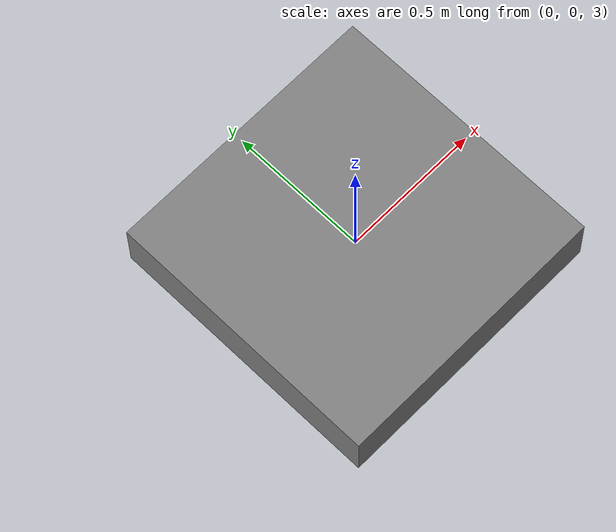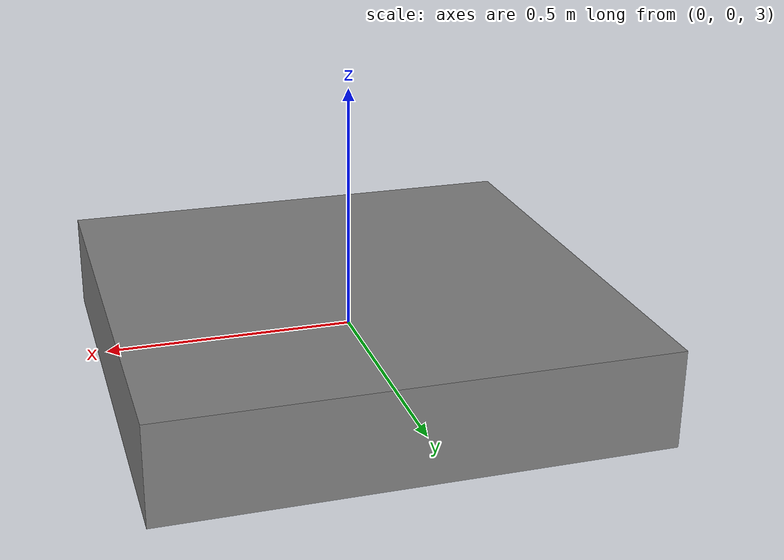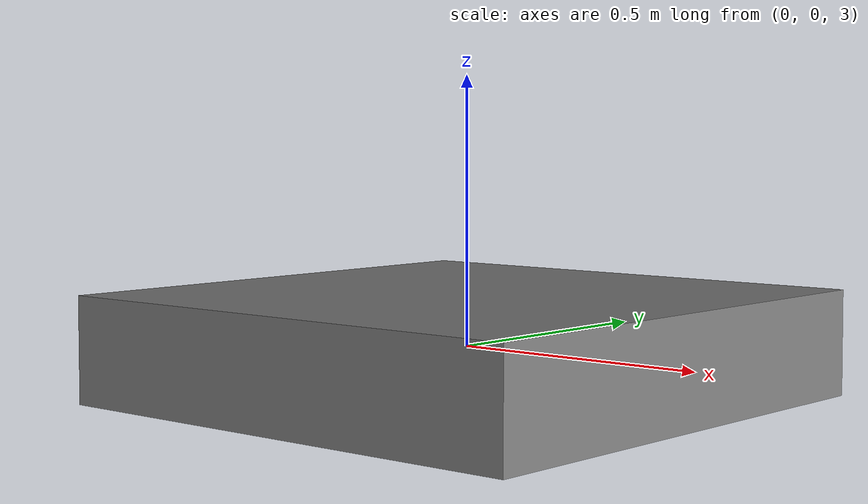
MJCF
<mujoco>
    <option timestep="0.01" integrator="RK4" gravity="0 0 -9.81">
        <flag gravity="enable"/>
    </option>
    <visual>
        <rgba haze="0.5 0.5 0.5 1"/>
        <global offwidth="1920" offheight="1080" elevation="-20" azimuth="120"/>
    </visual>
    <asset>
        <texture type="skybox" builtin="gradient" rgb1="0.4 0.6 0.8" rgb2="0 0 0" width="32" height="512"/>
        <texture name="grid" type="2d" builtin="checker" rgb1="0.2 0.3 0.4" rgb2="0.1 0.2 0.3" width="512" height="512"/>
        <material name="grid" texture="grid" texrepeat="1 1" texuniform="true" reflectance="0.2"/>
    </asset>
    <worldbody>
      <geom name="floor" size="0 0 0.01" type="plane" material="grid" condim="1" solref="1 0.1"/>
      <light name="floorlight" mode="fixed" pos="0 0 50" dir="0 0 -1" diffuse="0.8 0.8 0.8" specular="0.3 0.3 0.3"/>
      <body name="body_ball" pos="0 0 3">
        <geom type="box" size=".5 .5 .1" pos="0 0 0"/>
        <joint name="ball" pos=".5 .5 0" type="ball"/>
      </body>
    </worldbody>

    <actuator>
      <general name="ball_x" joint="ball" dyntype="integrator" gear="0 0 1" ctrllimited="true" ctrlrange="-100 100"/>
      <general name="ball_y" joint="ball" dyntype="integrator" gear="0 1 0" ctrllimited="true" ctrlrange="-100 100"/>
      <general name="ball_z" joint="ball" dyntype="integrator" gear="1 0 0" ctrllimited="true" ctrlrange="-100 100"/>
    </actuator>
  </mujoco>
